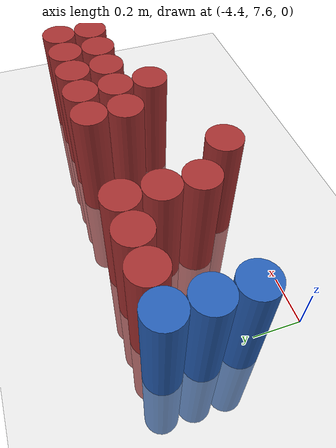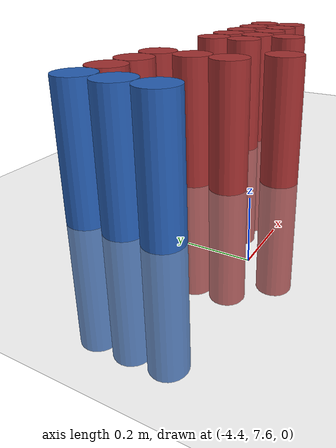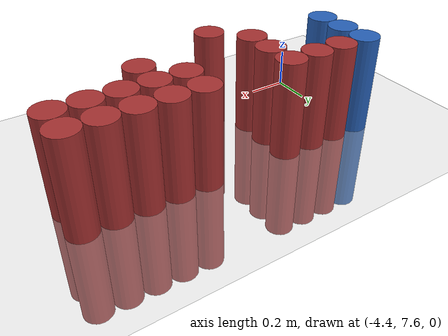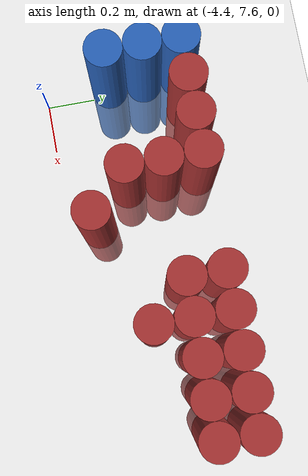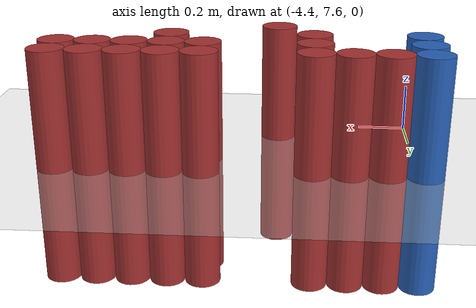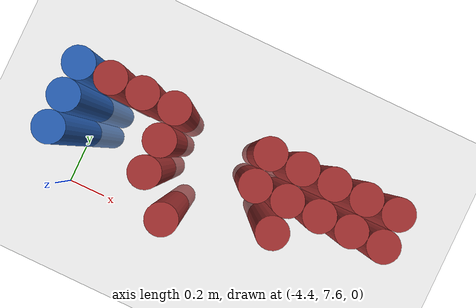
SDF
<sdf version="1.6">
 <world name="default">
  <model name="ground_plane">
   <static>1</static>
   <link name="link">
    <collision name="collision">
     <geometry><plane><normal>0 0 1</normal><size>100 100</size></plane></geometry>
     <surface><friction><ode><mu>100</mu><mu2>50</mu2></ode></friction></surface>
    </collision>
    <visual name="visual">
     <cast_shadows>0</cast_shadows>
     <geometry><plane><normal>0 0 1</normal><size>100 100</size></plane></geometry>
     <material>
      <script><uri>file://media/materials/scripts/gazebo.material</uri><name>Gazebo/Grey</name></script>
     </material>
    </visual>
   </link>
  </model>
  <model name="unit_cylinder_114">
   <static>1</static>
   <pose>-4.425000 7.875000 0.000000 0.000000 0.000000 0.000000</pose>
   <link name="link">
    <inertial>
     <mass>1</mass>
     <inertia><ixx>0.145833</ixx><ixy>0</ixy><ixz>0</ixz><iyy>0.145833</iyy><iyz>0</iyz><izz>0.125</izz></inertia>
    </inertial>
    <collision name="collision">
     <geometry><cylinder><radius>0.075000</radius><length>1</length></cylinder></geometry>
    </collision>
    <visual name="visual">
     <geometry><cylinder><radius>0.075000</radius><length>1</length></cylinder></geometry>
     <material>
      <ambient>0.152000 0.379000 0.720000 1</ambient>
      <diffuse>0.152000 0.379000 0.720000 1</diffuse>
     </material>
     <material>
      <script><name>Gazebo/Grey</name><uri>file://media/materials/scripts/gazebo.material</uri></script>
     </material>
    </visual>
    <sensor name="sensor_contact" type="contact"><contact><collision>collision</collision></contact></sensor>
   </link>
   <plugin filename="gz-sim-touchplugin-system" name="gz::sim::systems::TouchPlugin">
    <target>robot</target>
    <namespace>robot</namespace>
    <time>0.001</time>
    <enabled>true</enabled>
   </plugin>
  </model>
  <model name="unit_cylinder_115">
   <static>1</static>
   <pose>-4.425000 8.025000 0.000000 0.000000 0.000000 0.000000</pose>
   <link name="link">
    <inertial>
     <mass>1</mass>
     <inertia><ixx>0.145833</ixx><ixy>0</ixy><ixz>0</ixz><iyy>0.145833</iyy><iyz>0</iyz><izz>0.125</izz></inertia>
    </inertial>
    <collision name="collision">
     <geometry><cylinder><radius>0.075000</radius><length>1</length></cylinder></geometry>
    </collision>
    <visual name="visual">
     <geometry><cylinder><radius>0.075000</radius><length>1</length></cylinder></geometry>
     <material>
      <ambient>0.152000 0.379000 0.720000 1</ambient>
      <diffuse>0.152000 0.379000 0.720000 1</diffuse>
     </material>
     <material>
      <script><name>Gazebo/Grey</name><uri>file://media/materials/scripts/gazebo.material</uri></script>
     </material>
    </visual>
    <sensor name="sensor_contact" type="contact"><contact><collision>collision</collision></contact></sensor>
   </link>
   <plugin filename="gz-sim-touchplugin-system" name="gz::sim::systems::TouchPlugin">
    <target>robot</target>
    <namespace>robot</namespace>
    <time>0.001</time>
    <enabled>true</enabled>
   </plugin>
  </model>
  <model name="unit_cylinder_116">
   <static>1</static>
   <pose>-4.425000 8.175000 0.000000 0.000000 0.000000 0.000000</pose>
   <link name="link">
    <inertial>
     <mass>1</mass>
     <inertia><ixx>0.145833</ixx><ixy>0</ixy><ixz>0</ixz><iyy>0.145833</iyy><iyz>0</iyz><izz>0.125</izz></inertia>
    </inertial>
    <collision name="collision">
     <geometry><cylinder><radius>0.075000</radius><length>1</length></cylinder></geometry>
    </collision>
    <visual name="visual">
     <geometry><cylinder><radius>0.075000</radius><length>1</length></cylinder></geometry>
     <material>
      <ambient>0.152000 0.379000 0.720000 1</ambient>
      <diffuse>0.152000 0.379000 0.720000 1</diffuse>
     </material>
     <material>
      <script><name>Gazebo/Grey</name><uri>file://media/materials/scripts/gazebo.material</uri></script>
     </material>
    </visual>
    <sensor name="sensor_contact" type="contact"><contact><collision>collision</collision></contact></sensor>
   </link>
   <plugin filename="gz-sim-touchplugin-system" name="gz::sim::systems::TouchPlugin">
    <target>robot</target>
    <namespace>robot</namespace>
    <time>0.001</time>
    <enabled>true</enabled>
   </plugin>
  </model>
  <model name="unit_cylinder_134">
   <static>1</static>
   <pose>-4.275000 8.175000 0.000000 0.000000 0.000000 0.000000</pose>
   <link name="link">
    <inertial>
     <mass>1</mass>
     <inertia><ixx>0.145833</ixx><ixy>0</ixy><ixz>0</ixz><iyy>0.145833</iyy><iyz>0</iyz><izz>0.125</izz></inertia>
    </inertial>
    <collision name="collision">
     <geometry><cylinder><radius>0.075000</radius><length>1</length></cylinder></geometry>
    </collision>
    <visual name="visual">
     <geometry><cylinder><radius>0.075000</radius><length>1</length></cylinder></geometry>
     <material>
      <ambient>0.648000 0.192000 0.192000 1</ambient>
      <diffuse>0.648000 0.192000 0.192000 1</diffuse>
     </material>
     <material>
      <script><name>Gazebo/Grey</name><uri>file://media/materials/scripts/gazebo.material</uri></script>
     </material>
    </visual>
    <sensor name="sensor_contact" type="contact"><contact><collision>collision</collision></contact></sensor>
   </link>
   <plugin filename="gz-sim-touchplugin-system" name="gz::sim::systems::TouchPlugin">
    <target>robot</target>
    <namespace>robot</namespace>
    <time>0.001</time>
    <enabled>true</enabled>
   </plugin>
  </model>
  <model name="unit_cylinder_143">
   <static>1</static>
   <pose>-4.125000 8.175000 0.000000 0.000000 0.000000 0.000000</pose>
   <link name="link">
    <inertial>
     <mass>1</mass>
     <inertia><ixx>0.145833</ixx><ixy>0</ixy><ixz>0</ixz><iyy>0.145833</iyy><iyz>0</iyz><izz>0.125</izz></inertia>
    </inertial>
    <collision name="collision">
     <geometry><cylinder><radius>0.075000</radius><length>1</length></cylinder></geometry>
    </collision>
    <visual name="visual">
     <geometry><cylinder><radius>0.075000</radius><length>1</length></cylinder></geometry>
     <material>
      <ambient>0.648000 0.192000 0.192000 1</ambient>
      <diffuse>0.648000 0.192000 0.192000 1</diffuse>
     </material>
     <material>
      <script><name>Gazebo/Grey</name><uri>file://media/materials/scripts/gazebo.material</uri></script>
     </material>
    </visual>
    <sensor name="sensor_contact" type="contact"><contact><collision>collision</collision></contact></sensor>
   </link>
   <plugin filename="gz-sim-touchplugin-system" name="gz::sim::systems::TouchPlugin">
    <target>robot</target>
    <namespace>robot</namespace>
    <time>0.001</time>
    <enabled>true</enabled>
   </plugin>
  </model>
  <model name="unit_cylinder_150">
   <static>1</static>
   <pose>-3.975000 7.875000 0.000000 0.000000 0.000000 0.000000</pose>
   <link name="link">
    <inertial>
     <mass>1</mass>
     <inertia><ixx>0.145833</ixx><ixy>0</ixy><ixz>0</ixz><iyy>0.145833</iyy><iyz>0</iyz><izz>0.125</izz></inertia>
    </inertial>
    <collision name="collision">
     <geometry><cylinder><radius>0.075000</radius><length>1</length></cylinder></geometry>
    </collision>
    <visual name="visual">
     <geometry><cylinder><radius>0.075000</radius><length>1</length></cylinder></geometry>
     <material>
      <ambient>0.648000 0.192000 0.192000 1</ambient>
      <diffuse>0.648000 0.192000 0.192000 1</diffuse>
     </material>
     <material>
      <script><name>Gazebo/Grey</name><uri>file://media/materials/scripts/gazebo.material</uri></script>
     </material>
    </visual>
    <sensor name="sensor_contact" type="contact"><contact><collision>collision</collision></contact></sensor>
   </link>
   <plugin filename="gz-sim-touchplugin-system" name="gz::sim::systems::TouchPlugin">
    <target>robot</target>
    <namespace>robot</namespace>
    <time>0.001</time>
    <enabled>true</enabled>
   </plugin>
  </model>
  <model name="unit_cylinder_151">
   <static>1</static>
   <pose>-3.975000 8.025000 0.000000 0.000000 0.000000 0.000000</pose>
   <link name="link">
    <inertial>
     <mass>1</mass>
     <inertia><ixx>0.145833</ixx><ixy>0</ixy><ixz>0</ixz><iyy>0.145833</iyy><iyz>0</iyz><izz>0.125</izz></inertia>
    </inertial>
    <collision name="collision">
     <geometry><cylinder><radius>0.075000</radius><length>1</length></cylinder></geometry>
    </collision>
    <visual name="visual">
     <geometry><cylinder><radius>0.075000</radius><length>1</length></cylinder></geometry>
     <material>
      <ambient>0.648000 0.192000 0.192000 1</ambient>
      <diffuse>0.648000 0.192000 0.192000 1</diffuse>
     </material>
     <material>
      <script><name>Gazebo/Grey</name><uri>file://media/materials/scripts/gazebo.material</uri></script>
     </material>
    </visual>
    <sensor name="sensor_contact" type="contact"><contact><collision>collision</collision></contact></sensor>
   </link>
   <plugin filename="gz-sim-touchplugin-system" name="gz::sim::systems::TouchPlugin">
    <target>robot</target>
    <namespace>robot</namespace>
    <time>0.001</time>
    <enabled>true</enabled>
   </plugin>
  </model>
  <model name="unit_cylinder_152">
   <static>1</static>
   <pose>-3.975000 8.175000 0.000000 0.000000 0.000000 0.000000</pose>
   <link name="link">
    <inertial>
     <mass>1</mass>
     <inertia><ixx>0.145833</ixx><ixy>0</ixy><ixz>0</ixz><iyy>0.145833</iyy><iyz>0</iyz><izz>0.125</izz></inertia>
    </inertial>
    <collision name="collision">
     <geometry><cylinder><radius>0.075000</radius><length>1</length></cylinder></geometry>
    </collision>
    <visual name="visual">
     <geometry><cylinder><radius>0.075000</radius><length>1</length></cylinder></geometry>
     <material>
      <ambient>0.648000 0.192000 0.192000 1</ambient>
      <diffuse>0.648000 0.192000 0.192000 1</diffuse>
     </material>
     <material>
      <script><name>Gazebo/Grey</name><uri>file://media/materials/scripts/gazebo.material</uri></script>
     </material>
    </visual>
    <sensor name="sensor_contact" type="contact"><contact><collision>collision</collision></contact></sensor>
   </link>
   <plugin filename="gz-sim-touchplugin-system" name="gz::sim::systems::TouchPlugin">
    <target>robot</target>
    <namespace>robot</namespace>
    <time>0.001</time>
    <enabled>true</enabled>
   </plugin>
  </model>
  <model name="unit_cylinder_157">
   <static>1</static>
   <pose>-3.825000 7.725000 0.000000 0.000000 0.000000 0.000000</pose>
   <link name="link">
    <inertial>
     <mass>1</mass>
     <inertia><ixx>0.145833</ixx><ixy>0</ixy><ixz>0</ixz><iyy>0.145833</iyy><iyz>0</iyz><izz>0.125</izz></inertia>
    </inertial>
    <collision name="collision">
     <geometry><cylinder><radius>0.075000</radius><length>1</length></cylinder></geometry>
    </collision>
    <visual name="visual">
     <geometry><cylinder><radius>0.075000</radius><length>1</length></cylinder></geometry>
     <material>
      <ambient>0.648000 0.192000 0.192000 1</ambient>
      <diffuse>0.648000 0.192000 0.192000 1</diffuse>
     </material>
     <material>
      <script><name>Gazebo/Grey</name><uri>file://media/materials/scripts/gazebo.material</uri></script>
     </material>
    </visual>
    <sensor name="sensor_contact" type="contact"><contact><collision>collision</collision></contact></sensor>
   </link>
   <plugin filename="gz-sim-touchplugin-system" name="gz::sim::systems::TouchPlugin">
    <target>robot</target>
    <namespace>robot</namespace>
    <time>0.001</time>
    <enabled>true</enabled>
   </plugin>
  </model>
  <model name="unit_cylinder_167">
   <static>1</static>
   <pose>-3.525000 8.025000 0.000000 0.000000 0.000000 0.000000</pose>
   <link name="link">
    <inertial>
     <mass>1</mass>
     <inertia><ixx>0.145833</ixx><ixy>0</ixy><ixz>0</ixz><iyy>0.145833</iyy><iyz>0</iyz><izz>0.125</izz></inertia>
    </inertial>
    <collision name="collision">
     <geometry><cylinder><radius>0.075000</radius><length>1</length></cylinder></geometry>
    </collision>
    <visual name="visual">
     <geometry><cylinder><radius>0.075000</radius><length>1</length></cylinder></geometry>
     <material>
      <ambient>0.648000 0.192000 0.192000 1</ambient>
      <diffuse>0.648000 0.192000 0.192000 1</diffuse>
     </material>
     <material>
      <script><name>Gazebo/Grey</name><uri>file://media/materials/scripts/gazebo.material</uri></script>
     </material>
    </visual>
    <sensor name="sensor_contact" type="contact"><contact><collision>collision</collision></contact></sensor>
   </link>
   <plugin filename="gz-sim-touchplugin-system" name="gz::sim::systems::TouchPlugin">
    <target>robot</target>
    <namespace>robot</namespace>
    <time>0.001</time>
    <enabled>true</enabled>
   </plugin>
  </model>
  <model name="unit_cylinder_168">
   <static>1</static>
   <pose>-3.525000 8.175000 0.000000 0.000000 0.000000 0.000000</pose>
   <link name="link">
    <inertial>
     <mass>1</mass>
     <inertia><ixx>0.145833</ixx><ixy>0</ixy><ixz>0</ixz><iyy>0.145833</iyy><iyz>0</iyz><izz>0.125</izz></inertia>
    </inertial>
    <collision name="collision">
     <geometry><cylinder><radius>0.075000</radius><length>1</length></cylinder></geometry>
    </collision>
    <visual name="visual">
     <geometry><cylinder><radius>0.075000</radius><length>1</length></cylinder></geometry>
     <material>
      <ambient>0.648000 0.192000 0.192000 1</ambient>
      <diffuse>0.648000 0.192000 0.192000 1</diffuse>
     </material>
     <material>
      <script><name>Gazebo/Grey</name><uri>file://media/materials/scripts/gazebo.material</uri></script>
     </material>
    </visual>
    <sensor name="sensor_contact" type="contact"><contact><collision>collision</collision></contact></sensor>
   </link>
   <plugin filename="gz-sim-touchplugin-system" name="gz::sim::systems::TouchPlugin">
    <target>robot</target>
    <namespace>robot</namespace>
    <time>0.001</time>
    <enabled>true</enabled>
   </plugin>
  </model>
  <model name="unit_cylinder_174">
   <static>1</static>
   <pose>-3.375000 7.875000 0.000000 0.000000 0.000000 0.000000</pose>
   <link name="link">
    <inertial>
     <mass>1</mass>
     <inertia><ixx>0.145833</ixx><ixy>0</ixy><ixz>0</ixz><iyy>0.145833</iyy><iyz>0</iyz><izz>0.125</izz></inertia>
    </inertial>
    <collision name="collision">
     <geometry><cylinder><radius>0.075000</radius><length>1</length></cylinder></geometry>
    </collision>
    <visual name="visual">
     <geometry><cylinder><radius>0.075000</radius><length>1</length></cylinder></geometry>
     <material>
      <ambient>0.648000 0.192000 0.192000 1</ambient>
      <diffuse>0.648000 0.192000 0.192000 1</diffuse>
     </material>
     <material>
      <script><name>Gazebo/Grey</name><uri>file://media/materials/scripts/gazebo.material</uri></script>
     </material>
    </visual>
    <sensor name="sensor_contact" type="contact"><contact><collision>collision</collision></contact></sensor>
   </link>
   <plugin filename="gz-sim-touchplugin-system" name="gz::sim::systems::TouchPlugin">
    <target>robot</target>
    <namespace>robot</namespace>
    <time>0.001</time>
    <enabled>true</enabled>
   </plugin>
  </model>
  <model name="unit_cylinder_175">
   <static>1</static>
   <pose>-3.375000 8.025000 0.000000 0.000000 0.000000 0.000000</pose>
   <link name="link">
    <inertial>
     <mass>1</mass>
     <inertia><ixx>0.145833</ixx><ixy>0</ixy><ixz>0</ixz><iyy>0.145833</iyy><iyz>0</iyz><izz>0.125</izz></inertia>
    </inertial>
    <collision name="collision">
     <geometry><cylinder><radius>0.075000</radius><length>1</length></cylinder></geometry>
    </collision>
    <visual name="visual">
     <geometry><cylinder><radius>0.075000</radius><length>1</length></cylinder></geometry>
     <material>
      <ambient>0.648000 0.192000 0.192000 1</ambient>
      <diffuse>0.648000 0.192000 0.192000 1</diffuse>
     </material>
     <material>
      <script><name>Gazebo/Grey</name><uri>file://media/materials/scripts/gazebo.material</uri></script>
     </material>
    </visual>
    <sensor name="sensor_contact" type="contact"><contact><collision>collision</collision></contact></sensor>
   </link>
   <plugin filename="gz-sim-touchplugin-system" name="gz::sim::systems::TouchPlugin">
    <target>robot</target>
    <namespace>robot</namespace>
    <time>0.001</time>
    <enabled>true</enabled>
   </plugin>
  </model>
  <model name="unit_cylinder_176">
   <static>1</static>
   <pose>-3.375000 8.175000 0.000000 0.000000 0.000000 0.000000</pose>
   <link name="link">
    <inertial>
     <mass>1</mass>
     <inertia><ixx>0.145833</ixx><ixy>0</ixy><ixz>0</ixz><iyy>0.145833</iyy><iyz>0</iyz><izz>0.125</izz></inertia>
    </inertial>
    <collision name="collision">
     <geometry><cylinder><radius>0.075000</radius><length>1</length></cylinder></geometry>
    </collision>
    <visual name="visual">
     <geometry><cylinder><radius>0.075000</radius><length>1</length></cylinder></geometry>
     <material>
      <ambient>0.648000 0.192000 0.192000 1</ambient>
      <diffuse>0.648000 0.192000 0.192000 1</diffuse>
     </material>
     <material>
      <script><name>Gazebo/Grey</name><uri>file://media/materials/scripts/gazebo.material</uri></script>
     </material>
    </visual>
    <sensor name="sensor_contact" type="contact"><contact><collision>collision</collision></contact></sensor>
   </link>
   <plugin filename="gz-sim-touchplugin-system" name="gz::sim::systems::TouchPlugin">
    <target>robot</target>
    <namespace>robot</namespace>
    <time>0.001</time>
    <enabled>true</enabled>
   </plugin>
  </model>
  <model name="unit_cylinder_185">
   <static>1</static>
   <pose>-3.225000 8.025000 0.000000 0.000000 0.000000 0.000000</pose>
   <link name="link">
    <inertial>
     <mass>1</mass>
     <inertia><ixx>0.145833</ixx><ixy>0</ixy><ixz>0</ixz><iyy>0.145833</iyy><iyz>0</iyz><izz>0.125</izz></inertia>
    </inertial>
    <collision name="collision">
     <geometry><cylinder><radius>0.075000</radius><length>1</length></cylinder></geometry>
    </collision>
    <visual name="visual">
     <geometry><cylinder><radius>0.075000</radius><length>1</length></cylinder></geometry>
     <material>
      <ambient>0.648000 0.192000 0.192000 1</ambient>
      <diffuse>0.648000 0.192000 0.192000 1</diffuse>
     </material>
     <material>
      <script><name>Gazebo/Grey</name><uri>file://media/materials/scripts/gazebo.material</uri></script>
     </material>
    </visual>
    <sensor name="sensor_contact" type="contact"><contact><collision>collision</collision></contact></sensor>
   </link>
   <plugin filename="gz-sim-touchplugin-system" name="gz::sim::systems::TouchPlugin">
    <target>robot</target>
    <namespace>robot</namespace>
    <time>0.001</time>
    <enabled>true</enabled>
   </plugin>
  </model>
  <model name="unit_cylinder_186">
   <static>1</static>
   <pose>-3.225000 8.175000 0.000000 0.000000 0.000000 0.000000</pose>
   <link name="link">
    <inertial>
     <mass>1</mass>
     <inertia><ixx>0.145833</ixx><ixy>0</ixy><ixz>0</ixz><iyy>0.145833</iyy><iyz>0</iyz><izz>0.125</izz></inertia>
    </inertial>
    <collision name="collision">
     <geometry><cylinder><radius>0.075000</radius><length>1</length></cylinder></geometry>
    </collision>
    <visual name="visual">
     <geometry><cylinder><radius>0.075000</radius><length>1</length></cylinder></geometry>
     <material>
      <ambient>0.648000 0.192000 0.192000 1</ambient>
      <diffuse>0.648000 0.192000 0.192000 1</diffuse>
     </material>
     <material>
      <script><name>Gazebo/Grey</name><uri>file://media/materials/scripts/gazebo.material</uri></script>
     </material>
    </visual>
    <sensor name="sensor_contact" type="contact"><contact><collision>collision</collision></contact></sensor>
   </link>
   <plugin filename="gz-sim-touchplugin-system" name="gz::sim::systems::TouchPlugin">
    <target>robot</target>
    <namespace>robot</namespace>
    <time>0.001</time>
    <enabled>true</enabled>
   </plugin>
  </model>
  <model name="unit_cylinder_191">
   <static>1</static>
   <pose>-3.075000 8.025000 0.000000 0.000000 0.000000 0.000000</pose>
   <link name="link">
    <inertial>
     <mass>1</mass>
     <inertia><ixx>0.145833</ixx><ixy>0</ixy><ixz>0</ixz><iyy>0.145833</iyy><iyz>0</iyz><izz>0.125</izz></inertia>
    </inertial>
    <collision name="collision">
     <geometry><cylinder><radius>0.075000</radius><length>1</length></cylinder></geometry>
    </collision>
    <visual name="visual">
     <geometry><cylinder><radius>0.075000</radius><length>1</length></cylinder></geometry>
     <material>
      <ambient>0.648000 0.192000 0.192000 1</ambient>
      <diffuse>0.648000 0.192000 0.192000 1</diffuse>
     </material>
     <material>
      <script><name>Gazebo/Grey</name><uri>file://media/materials/scripts/gazebo.material</uri></script>
     </material>
    </visual>
    <sensor name="sensor_contact" type="contact"><contact><collision>collision</collision></contact></sensor>
   </link>
   <plugin filename="gz-sim-touchplugin-system" name="gz::sim::systems::TouchPlugin">
    <target>robot</target>
    <namespace>robot</namespace>
    <time>0.001</time>
    <enabled>true</enabled>
   </plugin>
  </model>
  <model name="unit_cylinder_192">
   <static>1</static>
   <pose>-3.075000 8.175000 0.000000 0.000000 0.000000 0.000000</pose>
   <link name="link">
    <inertial>
     <mass>1</mass>
     <inertia><ixx>0.145833</ixx><ixy>0</ixy><ixz>0</ixz><iyy>0.145833</iyy><iyz>0</iyz><izz>0.125</izz></inertia>
    </inertial>
    <collision name="collision">
     <geometry><cylinder><radius>0.075000</radius><length>1</length></cylinder></geometry>
    </collision>
    <visual name="visual">
     <geometry><cylinder><radius>0.075000</radius><length>1</length></cylinder></geometry>
     <material>
      <ambient>0.648000 0.192000 0.192000 1</ambient>
      <diffuse>0.648000 0.192000 0.192000 1</diffuse>
     </material>
     <material>
      <script><name>Gazebo/Grey</name><uri>file://media/materials/scripts/gazebo.material</uri></script>
     </material>
    </visual>
    <sensor name="sensor_contact" type="contact"><contact><collision>collision</collision></contact></sensor>
   </link>
   <plugin filename="gz-sim-touchplugin-system" name="gz::sim::systems::TouchPlugin">
    <target>robot</target>
    <namespace>robot</namespace>
    <time>0.001</time>
    <enabled>true</enabled>
   </plugin>
  </model>
  <model name="unit_cylinder_196">
   <static>1</static>
   <pose>-2.925000 8.025000 0.000000 0.000000 0.000000 0.000000</pose>
   <link name="link">
    <inertial>
     <mass>1</mass>
     <inertia><ixx>0.145833</ixx><ixy>0</ixy><ixz>0</ixz><iyy>0.145833</iyy><iyz>0</iyz><izz>0.125</izz></inertia>
    </inertial>
    <collision name="collision">
     <geometry><cylinder><radius>0.075000</radius><length>1</length></cylinder></geometry>
    </collision>
    <visual name="visual">
     <geometry><cylinder><radius>0.075000</radius><length>1</length></cylinder></geometry>
     <material>
      <ambient>0.648000 0.192000 0.192000 1</ambient>
      <diffuse>0.648000 0.192000 0.192000 1</diffuse>
     </material>
     <material>
      <script><name>Gazebo/Grey</name><uri>file://media/materials/scripts/gazebo.material</uri></script>
     </material>
    </visual>
    <sensor name="sensor_contact" type="contact"><contact><collision>collision</collision></contact></sensor>
   </link>
   <plugin filename="gz-sim-touchplugin-system" name="gz::sim::systems::TouchPlugin">
    <target>robot</target>
    <namespace>robot</namespace>
    <time>0.001</time>
    <enabled>true</enabled>
   </plugin>
  </model>
  <model name="unit_cylinder_197">
   <static>1</static>
   <pose>-2.925000 8.175000 0.000000 0.000000 0.000000 0.000000</pose>
   <link name="link">
    <inertial>
     <mass>1</mass>
     <inertia><ixx>0.145833</ixx><ixy>0</ixy><ixz>0</ixz><iyy>0.145833</iyy><iyz>0</iyz><izz>0.125</izz></inertia>
    </inertial>
    <collision name="collision">
     <geometry><cylinder><radius>0.075000</radius><length>1</length></cylinder></geometry>
    </collision>
    <visual name="visual">
     <geometry><cylinder><radius>0.075000</radius><length>1</length></cylinder></geometry>
     <material>
      <ambient>0.648000 0.192000 0.192000 1</ambient>
      <diffuse>0.648000 0.192000 0.192000 1</diffuse>
     </material>
     <material>
      <script><name>Gazebo/Grey</name><uri>file://media/materials/scripts/gazebo.material</uri></script>
     </material>
    </visual>
    <sensor name="sensor_contact" type="contact"><contact><collision>collision</collision></contact></sensor>
   </link>
   <plugin filename="gz-sim-touchplugin-system" name="gz::sim::systems::TouchPlugin">
    <target>robot</target>
    <namespace>robot</namespace>
    <time>0.001</time>
    <enabled>true</enabled>
   </plugin>
  </model>
 </world>
</sdf>
